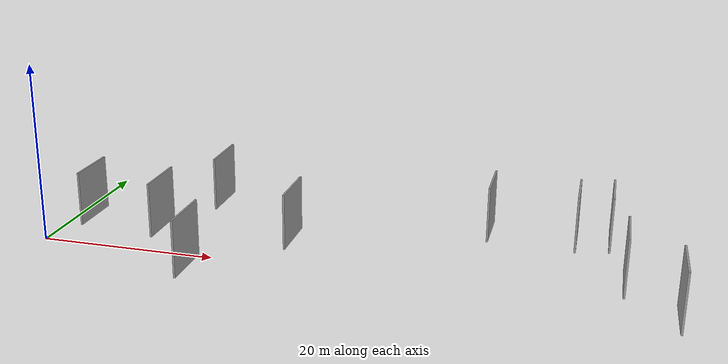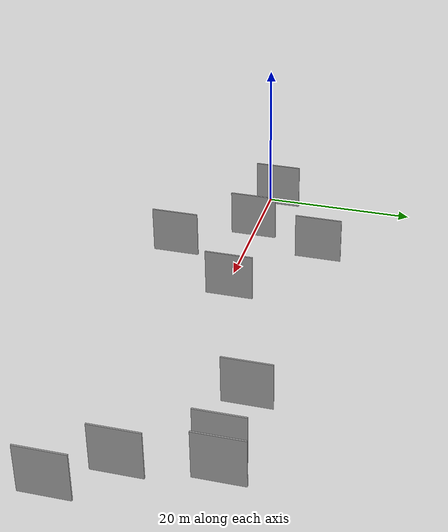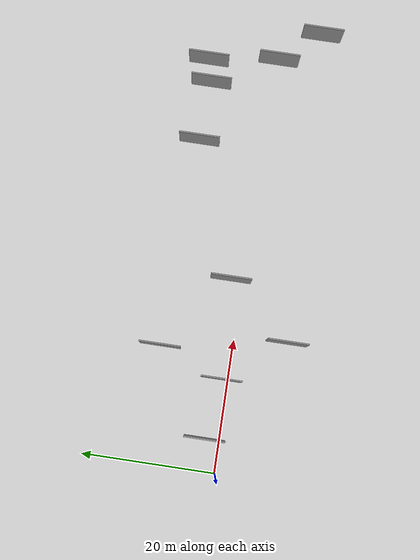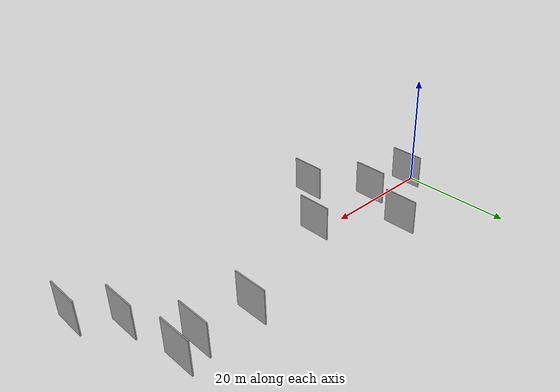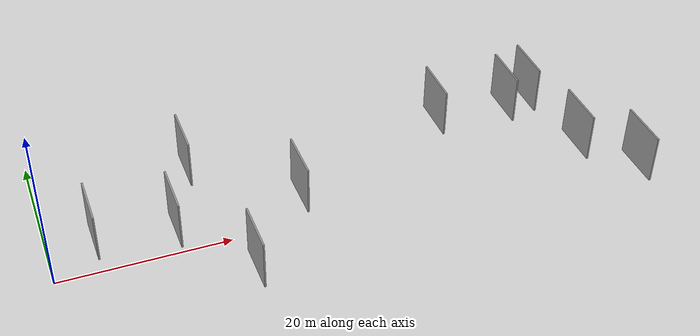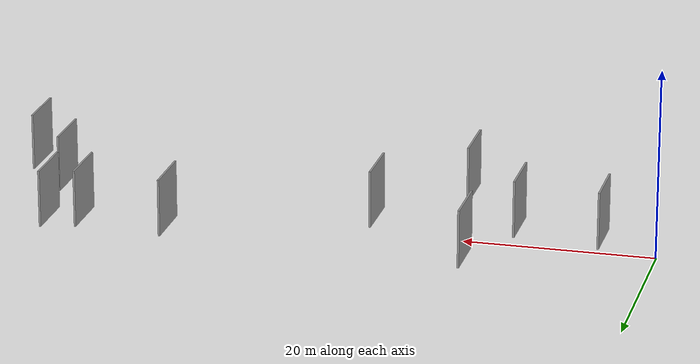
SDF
<sdf version="1.6">
 <world name="default">
  <scene>
   <sky><clouds><speed>12</speed></clouds></sky>
   <ambient>0.4 0.4 0.4 1</ambient>
   <background>0.7 0.7 0.7 1</background>
   <shadows>1</shadows>
  </scene>
  <gravity>0 0 -9.8066</gravity>
  <magnetic_field>6e-06 2.3e-05 -4.2e-05</magnetic_field>
  <physics default="0" name="default_physics" type="ode">
   <ode>
    <solver>
     <type>quick</type>
     <iters>10</iters>
     <sor>1.0</sor>
     <use_dynamic_moi_rescaling>0</use_dynamic_moi_rescaling>
    </solver>
    <constraints>
     <cfm>0</cfm>
     <erp>0.2</erp>
     <contact_max_correcting_vel>100</contact_max_correcting_vel>
     <contact_surface_layer>0.001</contact_surface_layer>
    </constraints>
   </ode>
   <max_step_size>0.004</max_step_size>
   <real_time_factor>1</real_time_factor>
   <real_time_update_rate>250</real_time_update_rate>
  </physics>
  <light name="sun" type="directional">
   <pose>0 0 10 0 0 0</pose>
   <diffuse>0.8 0.8 0.8 1</diffuse>
   <specular>0.2 0.2 0.2 1</specular>
   <attenuation>
    <range>1000</range>
    <constant>0.9</constant>
    <linear>0.01</linear>
    <quadratic>0.001</quadratic>
   </attenuation>
   <direction>-0.5 0.1 -0.9</direction>
  </light>
  <model name="grey_wall_1">
   <static>1</static>
   <pose>48.6409 9.5608 2.5 0.000000 0.000000 1.570796</pose>
   <link name="link">
    <pose>0 0 3.00 0 0 0</pose>
    <collision name="collision"><geometry><box><size>6.00 0.2 6.00</size></box></geometry></collision>
    <visual name="visual">
     <cast_shadows>0</cast_shadows>
     <geometry><box><size>6.00 0.2 6.00</size></box></geometry>
     <material>
      <script>
       <uri>model://grey_wall/materials/scripts</uri>
       <uri>model://grey_wall/materials/textures</uri>
       <name>vrc/grey_wall</name>
      </script>
     </material>
    </visual>
   </link>
  </model>
  <model name="grey_wall_2">
   <static>1</static>
   <pose>67.4424 -6.3808 2.5 0.000000 0.000000 1.570796</pose>
   <link name="link">
    <pose>0 0 3.00 0 0 0</pose>
    <collision name="collision"><geometry><box><size>6.00 0.2 6.00</size></box></geometry></collision>
    <visual name="visual">
     <cast_shadows>0</cast_shadows>
     <geometry><box><size>6.00 0.2 6.00</size></box></geometry>
     <material>
      <script>
       <uri>model://grey_wall/materials/scripts</uri>
       <uri>model://grey_wall/materials/textures</uri>
       <name>vrc/grey_wall</name>
      </script>
     </material>
    </visual>
   </link>
  </model>
  <model name="grey_wall_3">
   <static>1</static>
   <pose>28.6403 1.8601 2.5 0.000000 0.000000 1.570796</pose>
   <link name="link">
    <pose>0 0 3.00 0 0 0</pose>
    <collision name="collision"><geometry><box><size>6.00 0.2 6.00</size></box></geometry></collision>
    <visual name="visual">
     <cast_shadows>0</cast_shadows>
     <geometry><box><size>6.00 0.2 6.00</size></box></geometry>
     <material>
      <script>
       <uri>model://grey_wall/materials/scripts</uri>
       <uri>model://grey_wall/materials/textures</uri>
       <name>vrc/grey_wall</name>
      </script>
     </material>
    </visual>
   </link>
  </model>
  <model name="grey_wall_4">
   <static>1</static>
   <pose>57.7023 9.1035 2.5 0.000000 0.000000 1.570796</pose>
   <link name="link">
    <pose>0 0 3.00 0 0 0</pose>
    <collision name="collision"><geometry><box><size>6.00 0.2 6.00</size></box></geometry></collision>
    <visual name="visual">
     <cast_shadows>0</cast_shadows>
     <geometry><box><size>6.00 0.2 6.00</size></box></geometry>
     <material>
      <script>
       <uri>model://grey_wall/materials/scripts</uri>
       <uri>model://grey_wall/materials/textures</uri>
       <name>vrc/grey_wall</name>
      </script>
     </material>
    </visual>
   </link>
  </model>
  <model name="grey_wall_5">
   <static>1</static>
   <pose>13.9189 1.1152 2.5 0.000000 0.000000 1.570796</pose>
   <link name="link">
    <pose>0 0 3.00 0 0 0</pose>
    <collision name="collision"><geometry><box><size>6.00 0.2 6.00</size></box></geometry></collision>
    <visual name="visual">
     <cast_shadows>0</cast_shadows>
     <geometry><box><size>6.00 0.2 6.00</size></box></geometry>
     <material>
      <script>
       <uri>model://grey_wall/materials/scripts</uri>
       <uri>model://grey_wall/materials/textures</uri>
       <name>vrc/grey_wall</name>
      </script>
     </material>
    </visual>
   </link>
  </model>
  <model name="grey_wall_6">
   <static>1</static>
   <pose>5.0759 2.2890 2.5 0.000000 0.000000 1.570796</pose>
   <link name="link">
    <pose>0 0 3.00 0 0 0</pose>
    <collision name="collision"><geometry><box><size>6.00 0.2 6.00</size></box></geometry></collision>
    <visual name="visual">
     <cast_shadows>0</cast_shadows>
     <geometry><box><size>6.00 0.2 6.00</size></box></geometry>
     <material>
      <script>
       <uri>model://grey_wall/materials/scripts</uri>
       <uri>model://grey_wall/materials/textures</uri>
       <name>vrc/grey_wall</name>
      </script>
     </material>
    </visual>
   </link>
  </model>
  <model name="grey_wall_7">
   <static>1</static>
   <pose>62.6254 -0.4585 2.5 0.000000 0.000000 1.570796</pose>
   <link name="link">
    <pose>0 0 3.00 0 0 0</pose>
    <collision name="collision"><geometry><box><size>6.00 0.2 6.00</size></box></geometry></collision>
    <visual name="visual">
     <cast_shadows>0</cast_shadows>
     <geometry><box><size>6.00 0.2 6.00</size></box></geometry>
     <material>
      <script>
       <uri>model://grey_wall/materials/scripts</uri>
       <uri>model://grey_wall/materials/textures</uri>
       <name>vrc/grey_wall</name>
      </script>
     </material>
    </visual>
   </link>
  </model>
  <model name="grey_wall_8">
   <static>1</static>
   <pose>20.5481 -7.6233 2.5 0.000000 0.000000 1.570796</pose>
   <link name="link">
    <pose>0 0 3.00 0 0 0</pose>
    <collision name="collision"><geometry><box><size>6.00 0.2 6.00</size></box></geometry></collision>
    <visual name="visual">
     <cast_shadows>0</cast_shadows>
     <geometry><box><size>6.00 0.2 6.00</size></box></geometry>
     <material>
      <script>
       <uri>model://grey_wall/materials/scripts</uri>
       <uri>model://grey_wall/materials/textures</uri>
       <name>vrc/grey_wall</name>
      </script>
     </material>
    </visual>
   </link>
  </model>
  <model name="grey_wall_9">
   <static>1</static>
   <pose>61.1437 9.9911 2.5 0.000000 0.000000 1.570796</pose>
   <link name="link">
    <pose>0 0 3.00 0 0 0</pose>
    <collision name="collision"><geometry><box><size>6.00 0.2 6.00</size></box></geometry></collision>
    <visual name="visual">
     <cast_shadows>0</cast_shadows>
     <geometry><box><size>6.00 0.2 6.00</size></box></geometry>
     <material>
      <script>
       <uri>model://grey_wall/materials/scripts</uri>
       <uri>model://grey_wall/materials/textures</uri>
       <name>vrc/grey_wall</name>
      </script>
     </material>
    </visual>
   </link>
  </model>
  <model name="grey_wall_10">
   <static>1</static>
   <pose>17.5134 10.6710 2.5 0.000000 0.000000 1.570796</pose>
   <link name="link">
    <pose>0 0 3.00 0 0 0</pose>
    <collision name="collision"><geometry><box><size>6.00 0.2 6.00</size></box></geometry></collision>
    <visual name="visual">
     <cast_shadows>0</cast_shadows>
     <geometry><box><size>6.00 0.2 6.00</size></box></geometry>
     <material>
      <script>
       <uri>model://grey_wall/materials/scripts</uri>
       <uri>model://grey_wall/materials/textures</uri>
       <name>vrc/grey_wall</name>
      </script>
     </material>
    </visual>
   </link>
  </model>
 </world>
</sdf>
